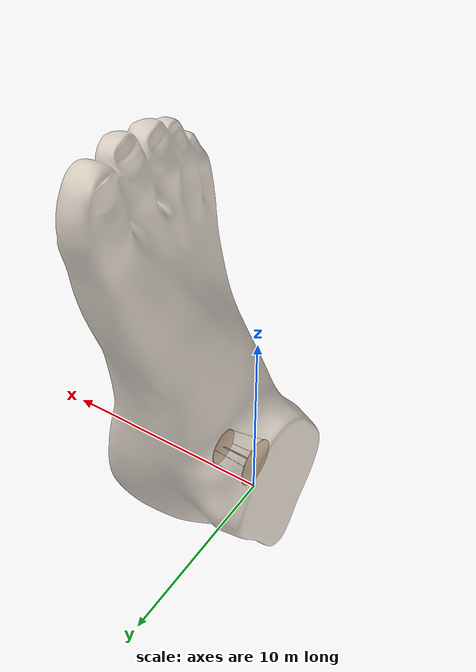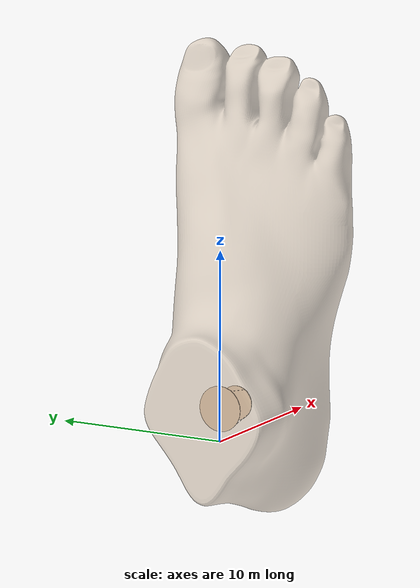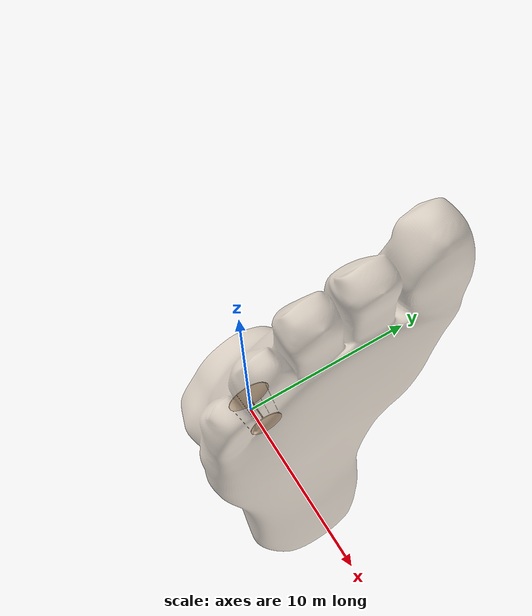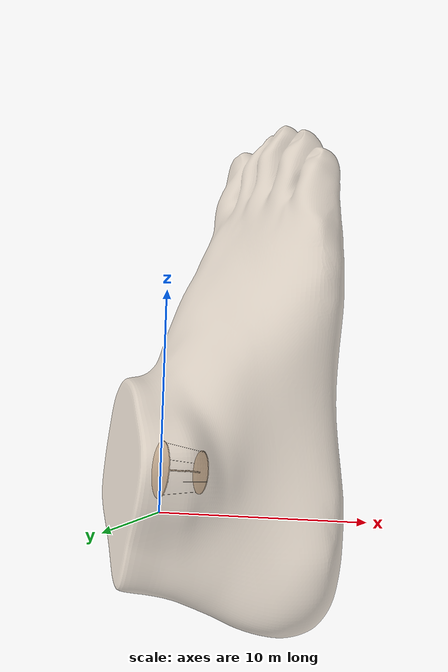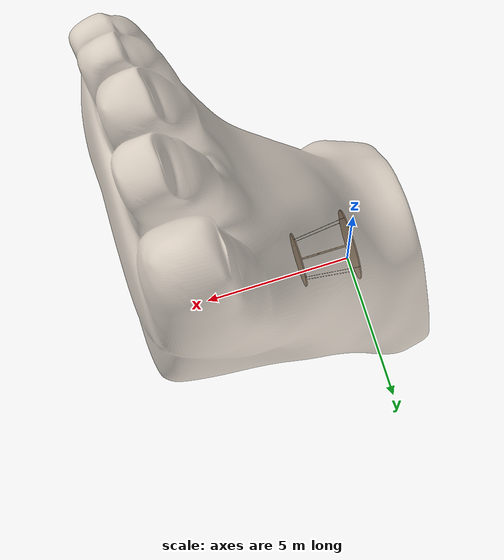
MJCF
<mujoco model="turmellbot">
  <compiler coordinate="global"/>
  <default>
    <geom rgba=".8 .6 .4 1"/>
  </default>
  <asset>
    <texture type="skybox" builtin="gradient" rgb1="1 1 1" rgb2=".6 .8 1" width="256" height="256"/>
    <mesh file="a-foot.stl" refpos="-1.1187 -0.00794 -1.7909" />
  </asset>
  <worldbody>
    <light pos="1 -1 5" dir="-1 1 -5" diffuse="1 1 1"/>
    <site name="reference" pos="0 0 1.7618"/>
    <body>
     <geom name="base" type="cylinder" fromto="-0.040969815198164714 0 1.762734815198164 -0.00096982 0 1.7627" size="1.2032592"/>
     <site name="b1" pos="-0.00096982 0.67506 0.76668" size="0.02"/>
     <site name="b2" pos="-0.00096982 -0.67506 2.7588" size="0.02"/>
     <site name="b3" pos="-0.00096982 0.99605 2.4378" size="0.02"/>
     <site name="b4" pos="-0.00096982 -0.99605 1.0877" size="0.02"/>
      <geom name="leg" type="capsule" fromto="-0.00096982 0 1.7627 1.0835 -0.0012686 1.7629" size="0.03"/>
      <site name="shnk" pos="1.0835 -0.0012686 1.7629"/>
      <body>
        <geom name="comp" type="capsule" fromto="1.0835 -0.0012686 1.7629 1.1187 0.00794 1.7909" size="0.03"/>
        <joint name="TC" type="hinge" pos="1.0835 -0.0012686 1.7629" axis="-0.174 0.97900 -0.103" limited="true" range="-20 20"/>
          <body>
           <geom name="b-foot" type="capsule" fromto="1.1187 0.00794 1.7909 1.7608 0 1.7627" size="0.03"/>
           <joint name="ST" type="hinge" pos="1.1187 0.00794 1.7909" axis="-0.642 0.208 0.738" limited="true" range="-15 15"/>
           <geom name="ptfm" type="cylinder" fromto="1.7608 0 1.7627 1.8008 0 1.7627" size="0.925584"/>
           <geom name="s-foot" type="mesh" mesh="a-foot" rgba=".85 .79 .72 0.7"/>
           <site name="p1" pos="1.7608 0.51928 0.99654" size="0.02"/>
           <site name="p2" pos="1.7608 -0.51928 2.5289" size="0.02"/>
           <site name="p3" pos="1.7608 0.7662 2.2820" size="0.02"/>
           <site name="p4" pos="1.7608 -0.7662 1.2435" size="0.02"/>
          </body>
      </body>
    </body>
  </worldbody>
  <tendon>
    <spatial name="t1" limited="true" range="1.78349 1.7835" width="0.005" stiffness="0" damping="10000">
      <site site="b1"/>
      <site site="p1"/>
    </spatial>
    <spatial name="t2"  limited="true" range="1.78349 1.7835" width="0.005" stiffness="0" damping="10000">
      <site site="b2"/>
      <site site="p2"/>
    </spatial>
    <spatial name="t3" limited="true" range="1.78349 1.7835" width="0.005" stiffness="0" damping="10000">
      <site site="b3"/>
      <site site="p3"/>
    </spatial>
    <spatial name="t4"  limited="true" range="1.78349 1.7835" width="0.005" stiffness="0" damping="10000">
      <site site="b4"/>
      <site site="p4"/>
    </spatial>
  </tendon>
  <actuator>
    <muscle name="t1" tendon="t1"/>
    <muscle name="t2" tendon="t2"/>
    <muscle name="t3" tendon="t3"/>
    <muscle name="t4" tendon="t4"/>
  </actuator>
  <sensor>
   <framepos name ="pptfm" objtype="geom" objname="ptfm"/>
   <actuatorfrc name="t1frc" actuator="t1"/>
   <actuatorfrc name="t2frc" actuator="t2"/>
   <actuatorfrc name="t3frc" actuator="t3"/>
   <actuatorfrc name="t4frc" actuator="t4"/>
  </sensor>
</mujoco>
